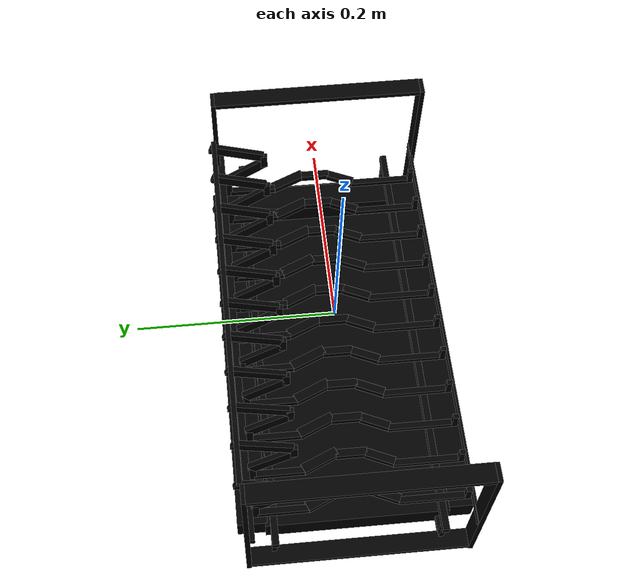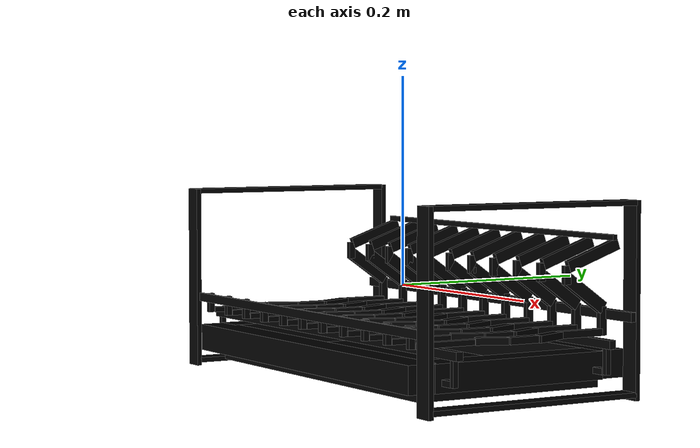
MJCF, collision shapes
<mujoco model="model">
  <option timestep="0.002" gravity="0.0 0.0 -9.81" />
  <compiler angle="radian" />
  <asset>
    <mesh file="visual/DishRack039.obj" name="DishRack039_vis" scale="0.8 0.8 0.8" />
    <texture file="visual/T_BC001.png" name="DishRack039_material" type="2d" />
    <material name="DishRack039_material" rgba="1 1 1 1.0" texture="DishRack039_material" shininess="0.4472135901451111" specular="0.3103448502657381" />
  </asset>
  <default>
    <default class="visual">
      <geom conaffinity="0" contype="0" group="2" type="mesh" density="0" />
    </default>
    <default class="collision">
      <geom group="3" rgba="1 1 1 0.25" density="0" solref="0.004 1" solimp="0.998 0.998 0.001" friction="0.5" />
    </default>
    <default class="spawn">
      <geom group="0" rgba="1 1 1 0.5" contype="0" conaffinity="0" />
      <site group="0" rgba="1 1 1 0.5" />
    </default>
    <default class="region">
      <geom group="1" conaffinity="0" contype="0" rgba="0 1 0 0" mass="0" />
    </default>
  </default>
  <worldbody>
    <body>
      <body name="object">
        <geom mesh="DishRack039_vis" type="mesh" class="visual" material="DishRack039_material" group="2" contype="0" conaffinity="0" density="0" mass="0.5" />
        <geom type="box" pos="-0.21843948 0.106539656 -0.00270032" size="0.00924619436267 0.00239716786892 0.0901747763156" quat="1.0 0.0 0.0 0.0" class="collision" group="3" rgba="0 0 0 0" density="0" friction="0.5" solref="0.004 1" solimp="0.998 0.998 0.001" />
        <geom type="box" pos="-0.21843948 -0.113914128 -0.00270032" size="0.00924619436267 0.00239716786892 0.0901747763156" quat="1.0 0.0 0.0 0.0" class="collision" group="3" rgba="0 0 0 0" density="0" friction="0.5" solref="0.004 1" solimp="0.998 0.998 0.001" />
        <geom type="box" pos="-0.21843948 -0.00342404 0.085288168" size="0.00924619436267 0.00239716786892 0.108553981781" quat="0.7071068286895752 0.7071067690849304 0.0 0.0" class="collision" group="3" rgba="0 0 0 0" density="0" friction="0.5" solref="0.004 1" solimp="0.998 0.998 0.001" />
        <geom type="box" pos="-0.21843948 -0.00342404 -0.08748516" size="0.00924619436267 0.00239716786892 0.108553981781" quat="0.7071068286895752 0.7071067690849304 0.0 0.0" class="collision" group="3" rgba="0 0 0 0" density="0" friction="0.5" solref="0.004 1" solimp="0.998 0.998 0.001" />
        <geom type="box" pos="0.217958208 -0.00342404 -0.08748516" size="0.00924619436267 0.00239716786892 0.108553981781" quat="0.7071068286895752 0.7071067690849304 0.0 0.0" class="collision" group="3" rgba="0 0 0 0" density="0" friction="0.5" solref="0.004 1" solimp="0.998 0.998 0.001" />
        <geom type="box" pos="0.187387792 -0.001031712 -0.066547912" size="0.0033294133842 0.00239716973156 0.084478521347" quat="0.7071068286895752 0.7071067690849304 0.0 0.0" class="collision" group="3" rgba="0 0 0 0" density="0" friction="0.5" solref="0.004 1" solimp="0.998 0.998 0.001" />
        <geom type="box" pos="0.217958208 -0.113914128 -0.00270032" size="0.00924619436267 0.00239716786892 0.0901747763156" quat="1.0 0.0 0.0 0.0" class="collision" group="3" rgba="0 0 0 0" density="0" friction="0.5" solref="0.004 1" solimp="0.998 0.998 0.001" />
        <geom type="box" pos="0.217958208 0.106539656 -0.00270032" size="0.00924619436267 0.00239716786892 0.0901747763156" quat="1.0 0.0 0.0 0.0" class="collision" group="3" rgba="0 0 0 0" density="0" friction="0.5" solref="0.004 1" solimp="0.998 0.998 0.001" />
        <geom type="box" pos="4.448e-05 -0.08356592 -0.040880912" size="0.0033877696842 0.00397985428572 0.224814295769" quat="0.5000000596046448 0.5 -0.4999999701976776 -0.5" class="collision" group="3" rgba="0 0 0 0" density="0" friction="0.5" solref="0.004 1" solimp="0.998 0.998 0.001" />
        <geom type="box" pos="4.448e-05 0.079920608 -0.040880912" size="0.0033877696842 0.00397985428572 0.224814295769" quat="0.5000000596046448 0.5 -0.4999999701976776 -0.5" class="collision" group="3" rgba="0 0 0 0" density="0" friction="0.5" solref="0.004 1" solimp="0.998 0.998 0.001" />
        <geom type="box" pos="-0.003243504 0.109264672 0.051970568" size="0.00243835002184 0.00255434755236 0.193051493168" quat="0.5000000596046448 0.5 -0.4999999701976776 -0.5" class="collision" group="3" rgba="0 0 0 0" density="0" friction="0.5" solref="0.004 1" solimp="0.998 0.998 0.001" />
        <geom type="box" pos="4.4832e-05 0.102894168 -0.017366064" size="0.00355580598116 0.004398721084 0.226417183876" quat="0.5000000596046448 0.5 -0.4999999701976776 -0.5" class="collision" group="3" rgba="0 0 0 0" density="0" friction="0.5" solref="0.004 1" solimp="0.998 0.998 0.001" />
        <geom type="box" pos="-0.19344668 -0.10864204 -0.02735312" size="0.00251364838332 0.00950607657431 0.00292577594518" quat="5.338507946817117e-08 5.338507591545749e-08 -0.7071067690849304 -0.7071068286895752" class="collision" group="3" rgba="0 0 0 0" density="0" friction="0.5" solref="0.004 1" solimp="0.998 0.998 0.001" />
        <geom type="box" pos="-0.192802488 -0.07368232 -0.034318832" size="0.00315784178674 0.00254035890102 0.0320763379335" quat="5.338507946817117e-08 5.338507591545749e-08 -0.7071067690849304 -0.7071068286895752" class="collision" group="3" rgba="0 0 0 0" density="0" friction="0.5" solref="0.004 1" solimp="0.998 0.998 0.001" />
        <geom type="box" pos="-0.192831112 0.070014936 -0.033586416" size="0.00318646356463 0.00327277854085 0.0248665183782" quat="5.338507946817117e-08 5.338507591545749e-08 -0.7071067690849304 -0.7071068286895752" class="collision" group="3" rgba="0 0 0 0" density="0" friction="0.5" solref="0.004 1" solimp="0.998 0.998 0.001" />
        <geom type="box" pos="-0.19344668 0.096679728 -0.023697248" size="0.00251364819706 0.0131619527936 0.00378346256912" quat="5.338507946817117e-08 5.338507591545749e-08 -0.7071067690849304 -0.7071068286895752" class="collision" group="3" rgba="0 0 0 0" density="0" friction="0.5" solref="0.004 1" solimp="0.998 0.998 0.001" />
        <geom type="box" pos="-0.178624264 -0.002023936 -0.033586416" size="0.004015500471 0.00327277928591 0.0154052615165" quat="5.338507946817117e-08 5.338507591545749e-08 -0.7071067690849304 -0.7071068286895752" class="collision" group="3" rgba="0 0 0 0" density="0" friction="0.5" solref="0.004 1" solimp="0.998 0.998 0.001" />
        <geom type="box" pos="-0.19344668 0.07732248 0.00203708" size="0.00251364931464 0.0243524327874 0.00591016486287" quat="5.3406690625479314e-08 8.168458975887916e-08 -0.30070582032203674 -0.9537169337272644" class="collision" group="3" rgba="0 0 0 0" density="0" friction="0.5" solref="0.004 1" solimp="0.998 0.998 0.001" />
        <geom type="box" pos="-0.19344668 0.056486656 0.019753408" size="0.00251364819706 0.00857789069414 0.00349435582757" quat="5.338507946817117e-08 5.338507591545749e-08 -0.7071067690849304 -0.7071068286895752" class="collision" group="3" rgba="0 0 0 0" density="0" friction="0.5" solref="0.004 1" solimp="0.998 0.998 0.001" />
        <geom type="box" pos="-0.193393448 0.085817048 0.036669632" size="0.00256689153612 0.0294012695551 0.00528842955828" quat="8.697315223571422e-08 6.19317148675691e-08 -0.9861523509025574 -0.1658419519662857" class="collision" group="3" rgba="0 0 0 0" density="0" friction="0.5" solref="0.004 1" solimp="0.998 0.998 0.001" />
        <geom type="box" pos="-0.154746376 0.085817048 0.036669632" size="0.00256689153612 0.0294012695551 0.00528842955828" quat="8.697315223571422e-08 6.19317148675691e-08 -0.9861523509025574 -0.1658419519662857" class="collision" group="3" rgba="0 0 0 0" density="0" friction="0.5" solref="0.004 1" solimp="0.998 0.998 0.001" />
        <geom type="box" pos="-0.154799616 0.056486656 0.019753408" size="0.00251364819706 0.00857789069414 0.00349435582757" quat="5.338507946817117e-08 5.338507591545749e-08 -0.7071067690849304 -0.7071068286895752" class="collision" group="3" rgba="0 0 0 0" density="0" friction="0.5" solref="0.004 1" solimp="0.998 0.998 0.001" />
        <geom type="box" pos="-0.154799616 0.07732248 0.00203708" size="0.00251364931464 0.0243524327874 0.00591016486287" quat="5.3406690625479314e-08 8.168458975887916e-08 -0.30070582032203674 -0.9537169337272644" class="collision" group="3" rgba="0 0 0 0" density="0" friction="0.5" solref="0.004 1" solimp="0.998 0.998 0.001" />
        <geom type="box" pos="-0.139977192 -0.002023936 -0.033586416" size="0.004015500471 0.00327277928591 0.0154052615165" quat="5.338507946817117e-08 5.338507591545749e-08 -0.7071067690849304 -0.7071068286895752" class="collision" group="3" rgba="0 0 0 0" density="0" friction="0.5" solref="0.004 1" solimp="0.998 0.998 0.001" />
        <geom type="box" pos="-0.154799616 0.096679728 -0.023697248" size="0.00251364819706 0.0131619527936 0.00378346256912" quat="5.338507946817117e-08 5.338507591545749e-08 -0.7071067690849304 -0.7071068286895752" class="collision" group="3" rgba="0 0 0 0" density="0" friction="0.5" solref="0.004 1" solimp="0.998 0.998 0.001" />
        <geom type="box" pos="-0.15418404 0.070014936 -0.033586416" size="0.00318646356463 0.00327277854085 0.0248665183782" quat="5.338507946817117e-08 5.338507591545749e-08 -0.7071067690849304 -0.7071068286895752" class="collision" group="3" rgba="0 0 0 0" density="0" friction="0.5" solref="0.004 1" solimp="0.998 0.998 0.001" />
        <geom type="box" pos="-0.154155424 -0.07368232 -0.034318832" size="0.00315784178674 0.00254035890102 0.0320763379335" quat="5.338507946817117e-08 5.338507591545749e-08 -0.7071067690849304 -0.7071068286895752" class="collision" group="3" rgba="0 0 0 0" density="0" friction="0.5" solref="0.004 1" solimp="0.998 0.998 0.001" />
        <geom type="box" pos="-0.154799616 -0.10864204 -0.02735312" size="0.00251364838332 0.00950607657431 0.00292577594518" quat="5.338507946817117e-08 5.338507591545749e-08 -0.7071067690849304 -0.7071068286895752" class="collision" group="3" rgba="0 0 0 0" density="0" friction="0.5" solref="0.004 1" solimp="0.998 0.998 0.001" />
        <geom type="box" pos="-0.116755368 -0.10864204 -0.02735312" size="0.00251364838332 0.00950607657431 0.00292577594518" quat="5.338507946817117e-08 5.338507591545749e-08 -0.7071067690849304 -0.7071068286895752" class="collision" group="3" rgba="0 0 0 0" density="0" friction="0.5" solref="0.004 1" solimp="0.998 0.998 0.001" />
        <geom type="box" pos="-0.116111168 -0.07368232 -0.034318832" size="0.00315784178674 0.00254035890102 0.0320763379335" quat="5.338507946817117e-08 5.338507591545749e-08 -0.7071067690849304 -0.7071068286895752" class="collision" group="3" rgba="0 0 0 0" density="0" friction="0.5" solref="0.004 1" solimp="0.998 0.998 0.001" />
        <geom type="box" pos="-0.116139792 0.070014936 -0.033586416" size="0.00318646356463 0.00327277854085 0.0248665183782" quat="5.338507946817117e-08 5.338507591545749e-08 -0.7071067690849304 -0.7071068286895752" class="collision" group="3" rgba="0 0 0 0" density="0" friction="0.5" solref="0.004 1" solimp="0.998 0.998 0.001" />
        <geom type="box" pos="-0.116755368 0.096679728 -0.023697248" size="0.00251364819706 0.0131619527936 0.00378346256912" quat="5.338507946817117e-08 5.338507591545749e-08 -0.7071067690849304 -0.7071068286895752" class="collision" group="3" rgba="0 0 0 0" density="0" friction="0.5" solref="0.004 1" solimp="0.998 0.998 0.001" />
        <geom type="box" pos="-0.101932944 -0.002023936 -0.033586416" size="0.004015500471 0.00327277928591 0.0154052615165" quat="5.338507946817117e-08 5.338507591545749e-08 -0.7071067690849304 -0.7071068286895752" class="collision" group="3" rgba="0 0 0 0" density="0" friction="0.5" solref="0.004 1" solimp="0.998 0.998 0.001" />
        <geom type="box" pos="-0.116755368 0.07732248 0.00203708" size="0.00251364931464 0.0243524327874 0.00591016486287" quat="5.3406690625479314e-08 8.168458975887916e-08 -0.30070582032203674 -0.9537169337272644" class="collision" group="3" rgba="0 0 0 0" density="0" friction="0.5" solref="0.004 1" solimp="0.998 0.998 0.001" />
        <geom type="box" pos="-0.116755368 0.056486656 0.019753408" size="0.00251364819706 0.00857789069414 0.00349435582757" quat="5.338507946817117e-08 5.338507591545749e-08 -0.7071067690849304 -0.7071068286895752" class="collision" group="3" rgba="0 0 0 0" density="0" friction="0.5" solref="0.004 1" solimp="0.998 0.998 0.001" />
        <geom type="box" pos="-0.116702128 0.085817048 0.036669632" size="0.00256689153612 0.0294012695551 0.00528842955828" quat="8.697315223571422e-08 6.19317148675691e-08 -0.9861523509025574 -0.1658419519662857" class="collision" group="3" rgba="0 0 0 0" density="0" friction="0.5" solref="0.004 1" solimp="0.998 0.998 0.001" />
        <geom type="box" pos="-0.079013208 0.085817048 0.036669632" size="0.00256689153612 0.0294012695551 0.00528842955828" quat="8.697315223571422e-08 6.19317148675691e-08 -0.9861523509025574 -0.1658419519662857" class="collision" group="3" rgba="0 0 0 0" density="0" friction="0.5" solref="0.004 1" solimp="0.998 0.998 0.001" />
        <geom type="box" pos="-0.079066448 0.056486656 0.019753408" size="0.00251364819706 0.00857789069414 0.00349435582757" quat="5.338507946817117e-08 5.338507591545749e-08 -0.7071067690849304 -0.7071068286895752" class="collision" group="3" rgba="0 0 0 0" density="0" friction="0.5" solref="0.004 1" solimp="0.998 0.998 0.001" />
        <geom type="box" pos="-0.079066448 0.07732248 0.00203708" size="0.00251364931464 0.0243524327874 0.00591016486287" quat="5.3406690625479314e-08 8.168458975887916e-08 -0.30070582032203674 -0.9537169337272644" class="collision" group="3" rgba="0 0 0 0" density="0" friction="0.5" solref="0.004 1" solimp="0.998 0.998 0.001" />
        <geom type="box" pos="-0.064244024 -0.002023936 -0.033586416" size="0.004015500471 0.00327277928591 0.0154052615165" quat="5.338507946817117e-08 5.338507591545749e-08 -0.7071067690849304 -0.7071068286895752" class="collision" group="3" rgba="0 0 0 0" density="0" friction="0.5" solref="0.004 1" solimp="0.998 0.998 0.001" />
        <geom type="box" pos="-0.079066448 0.096679728 -0.023697248" size="0.00251364819706 0.0131619527936 0.00378346256912" quat="5.338507946817117e-08 5.338507591545749e-08 -0.7071067690849304 -0.7071068286895752" class="collision" group="3" rgba="0 0 0 0" density="0" friction="0.5" solref="0.004 1" solimp="0.998 0.998 0.001" />
        <geom type="box" pos="-0.078450872 0.070014936 -0.033586416" size="0.00318646356463 0.00327277854085 0.0248665183782" quat="5.338507946817117e-08 5.338507591545749e-08 -0.7071067690849304 -0.7071068286895752" class="collision" group="3" rgba="0 0 0 0" density="0" friction="0.5" solref="0.004 1" solimp="0.998 0.998 0.001" />
        <geom type="box" pos="-0.078422256 -0.07368232 -0.034318832" size="0.00315784178674 0.00254035890102 0.0320763379335" quat="5.338507946817117e-08 5.338507591545749e-08 -0.7071067690849304 -0.7071068286895752" class="collision" group="3" rgba="0 0 0 0" density="0" friction="0.5" solref="0.004 1" solimp="0.998 0.998 0.001" />
        <geom type="box" pos="-0.079066448 -0.10864204 -0.02735312" size="0.00251364838332 0.00950607657431 0.00292577594518" quat="5.338507946817117e-08 5.338507591545749e-08 -0.7071067690849304 -0.7071068286895752" class="collision" group="3" rgba="0 0 0 0" density="0" friction="0.5" solref="0.004 1" solimp="0.998 0.998 0.001" />
        <geom type="box" pos="-0.040875488 -0.10864204 -0.02735312" size="0.00251364838332 0.00950607657431 0.00292577594518" quat="5.338507946817117e-08 5.338507591545749e-08 -0.7071067690849304 -0.7071068286895752" class="collision" group="3" rgba="0 0 0 0" density="0" friction="0.5" solref="0.004 1" solimp="0.998 0.998 0.001" />
        <geom type="box" pos="-0.040231288 -0.07368232 -0.034318832" size="0.00315784178674 0.00254035890102 0.0320763379335" quat="5.338507946817117e-08 5.338507591545749e-08 -0.7071067690849304 -0.7071068286895752" class="collision" group="3" rgba="0 0 0 0" density="0" friction="0.5" solref="0.004 1" solimp="0.998 0.998 0.001" />
        <geom type="box" pos="-0.040259912 0.070014936 -0.033586416" size="0.00318646356463 0.00327277854085 0.0248665183782" quat="5.338507946817117e-08 5.338507591545749e-08 -0.7071067690849304 -0.7071068286895752" class="collision" group="3" rgba="0 0 0 0" density="0" friction="0.5" solref="0.004 1" solimp="0.998 0.998 0.001" />
        <geom type="box" pos="-0.040875488 0.096679728 -0.023697248" size="0.00251364819706 0.0131619527936 0.00378346256912" quat="5.338507946817117e-08 5.338507591545749e-08 -0.7071067690849304 -0.7071068286895752" class="collision" group="3" rgba="0 0 0 0" density="0" friction="0.5" solref="0.004 1" solimp="0.998 0.998 0.001" />
        <geom type="box" pos="-0.026053064 -0.002023936 -0.033586416" size="0.004015500471 0.00327277928591 0.0154052615165" quat="5.338507946817117e-08 5.338507591545749e-08 -0.7071067690849304 -0.7071068286895752" class="collision" group="3" rgba="0 0 0 0" density="0" friction="0.5" solref="0.004 1" solimp="0.998 0.998 0.001" />
        <geom type="box" pos="-0.040875488 0.07732248 0.00203708" size="0.00251364931464 0.0243524327874 0.00591016486287" quat="5.3406690625479314e-08 8.168458975887916e-08 -0.30070582032203674 -0.9537169337272644" class="collision" group="3" rgba="0 0 0 0" density="0" friction="0.5" solref="0.004 1" solimp="0.998 0.998 0.001" />
        <geom type="box" pos="-0.040875488 0.056486656 0.019753408" size="0.00251364819706 0.00857789069414 0.00349435582757" quat="5.338507946817117e-08 5.338507591545749e-08 -0.7071067690849304 -0.7071068286895752" class="collision" group="3" rgba="0 0 0 0" density="0" friction="0.5" solref="0.004 1" solimp="0.998 0.998 0.001" />
        <geom type="box" pos="-0.040822248 0.085817048 0.036669632" size="0.00256689153612 0.0294012695551 0.00528842955828" quat="8.697315223571422e-08 6.19317148675691e-08 -0.9861523509025574 -0.1658419519662857" class="collision" group="3" rgba="0 0 0 0" density="0" friction="0.5" solref="0.004 1" solimp="0.998 0.998 0.001" />
        <geom type="box" pos="-0.003333784 -0.10864204 -0.02735312" size="0.00251364838332 0.00950607657431 0.00292577594518" quat="5.338507946817117e-08 5.338507591545749e-08 -0.7071067690849304 -0.7071068286895752" class="collision" group="3" rgba="0 0 0 0" density="0" friction="0.5" solref="0.004 1" solimp="0.998 0.998 0.001" />
        <geom type="box" pos="-0.002689584 -0.07368232 -0.034318832" size="0.00315784178674 0.00254035890102 0.0320763379335" quat="5.338507946817117e-08 5.338507591545749e-08 -0.7071067690849304 -0.7071068286895752" class="collision" group="3" rgba="0 0 0 0" density="0" friction="0.5" solref="0.004 1" solimp="0.998 0.998 0.001" />
        <geom type="box" pos="-0.0027182 0.070014936 -0.033586416" size="0.00318646356463 0.00327277854085 0.0248665183782" quat="5.338507946817117e-08 5.338507591545749e-08 -0.7071067690849304 -0.7071068286895752" class="collision" group="3" rgba="0 0 0 0" density="0" friction="0.5" solref="0.004 1" solimp="0.998 0.998 0.001" />
        <geom type="box" pos="-0.003333784 0.096679728 -0.023697248" size="0.00251364819706 0.0131619527936 0.00378346256912" quat="5.338507946817117e-08 5.338507591545749e-08 -0.7071067690849304 -0.7071068286895752" class="collision" group="3" rgba="0 0 0 0" density="0" friction="0.5" solref="0.004 1" solimp="0.998 0.998 0.001" />
        <geom type="box" pos="0.01148864 -0.002023936 -0.033586416" size="0.004015500471 0.00327277928591 0.0154052615165" quat="5.338507946817117e-08 5.338507591545749e-08 -0.7071067690849304 -0.7071068286895752" class="collision" group="3" rgba="0 0 0 0" density="0" friction="0.5" solref="0.004 1" solimp="0.998 0.998 0.001" />
        <geom type="box" pos="-0.003333776 0.07732248 0.00203708" size="0.00251364931464 0.0243524327874 0.00591016486287" quat="5.3406690625479314e-08 8.168458975887916e-08 -0.30070582032203674 -0.9537169337272644" class="collision" group="3" rgba="0 0 0 0" density="0" friction="0.5" solref="0.004 1" solimp="0.998 0.998 0.001" />
        <geom type="box" pos="-0.003333784 0.056486656 0.019753408" size="0.00251364819706 0.00857789069414 0.00349435582757" quat="5.338507946817117e-08 5.338507591545749e-08 -0.7071067690849304 -0.7071068286895752" class="collision" group="3" rgba="0 0 0 0" density="0" friction="0.5" solref="0.004 1" solimp="0.998 0.998 0.001" />
        <geom type="box" pos="-0.003280536 0.085817048 0.036669632" size="0.00256689153612 0.0294012695551 0.00528842955828" quat="8.697315223571422e-08 6.19317148675691e-08 -0.9861523509025574 -0.1658419519662857" class="collision" group="3" rgba="0 0 0 0" density="0" friction="0.5" solref="0.004 1" solimp="0.998 0.998 0.001" />
        <geom type="box" pos="0.0342452 -0.10864204 -0.02735312" size="0.00251364838332 0.00950607657431 0.00292577594518" quat="5.338507946817117e-08 5.338507591545749e-08 -0.7071067690849304 -0.7071068286895752" class="collision" group="3" rgba="0 0 0 0" density="0" friction="0.5" solref="0.004 1" solimp="0.998 0.998 0.001" />
        <geom type="box" pos="0.0348894 -0.07368232 -0.034318832" size="0.00315784178674 0.00254035890102 0.0320763379335" quat="5.338507946817117e-08 5.338507591545749e-08 -0.7071067690849304 -0.7071068286895752" class="collision" group="3" rgba="0 0 0 0" density="0" friction="0.5" solref="0.004 1" solimp="0.998 0.998 0.001" />
        <geom type="box" pos="0.034860776 0.070014936 -0.033586416" size="0.00318646356463 0.00327277854085 0.0248665183782" quat="5.338507946817117e-08 5.338507591545749e-08 -0.7071067690849304 -0.7071068286895752" class="collision" group="3" rgba="0 0 0 0" density="0" friction="0.5" solref="0.004 1" solimp="0.998 0.998 0.001" />
        <geom type="box" pos="0.0342452 0.096679728 -0.023697248" size="0.00251364819706 0.0131619527936 0.00378346256912" quat="5.338507946817117e-08 5.338507591545749e-08 -0.7071067690849304 -0.7071068286895752" class="collision" group="3" rgba="0 0 0 0" density="0" friction="0.5" solref="0.004 1" solimp="0.998 0.998 0.001" />
        <geom type="box" pos="0.049067624 -0.002023936 -0.033586416" size="0.004015500471 0.00327277928591 0.0154052615165" quat="5.338507946817117e-08 5.338507591545749e-08 -0.7071067690849304 -0.7071068286895752" class="collision" group="3" rgba="0 0 0 0" density="0" friction="0.5" solref="0.004 1" solimp="0.998 0.998 0.001" />
        <geom type="box" pos="0.0342452 0.07732248 0.00203708" size="0.00251364931464 0.0243524327874 0.00591016486287" quat="5.3406690625479314e-08 8.168458975887916e-08 -0.30070582032203674 -0.9537169337272644" class="collision" group="3" rgba="0 0 0 0" density="0" friction="0.5" solref="0.004 1" solimp="0.998 0.998 0.001" />
        <geom type="box" pos="0.0342452 0.056486656 0.019753408" size="0.00251364819706 0.00857789069414 0.00349435582757" quat="5.338507946817117e-08 5.338507591545749e-08 -0.7071067690849304 -0.7071068286895752" class="collision" group="3" rgba="0 0 0 0" density="0" friction="0.5" solref="0.004 1" solimp="0.998 0.998 0.001" />
        <geom type="box" pos="0.03429844 0.085817048 0.036669632" size="0.00256689153612 0.0294012695551 0.00528842955828" quat="8.697315223571422e-08 6.19317148675691e-08 -0.9861523509025574 -0.1658419519662857" class="collision" group="3" rgba="0 0 0 0" density="0" friction="0.5" solref="0.004 1" solimp="0.998 0.998 0.001" />
        <geom type="box" pos="0.072291568 -0.10864204 -0.02735312" size="0.00251364838332 0.00950607657431 0.00292577594518" quat="5.338507946817117e-08 5.338507591545749e-08 -0.7071067690849304 -0.7071068286895752" class="collision" group="3" rgba="0 0 0 0" density="0" friction="0.5" solref="0.004 1" solimp="0.998 0.998 0.001" />
        <geom type="box" pos="0.072935768 -0.07368232 -0.034318832" size="0.00315784178674 0.00254035890102 0.0320763379335" quat="5.338507946817117e-08 5.338507591545749e-08 -0.7071067690849304 -0.7071068286895752" class="collision" group="3" rgba="0 0 0 0" density="0" friction="0.5" solref="0.004 1" solimp="0.998 0.998 0.001" />
        <geom type="box" pos="0.072907152 0.070014936 -0.033586416" size="0.00318646356463 0.00327277854085 0.0248665183782" quat="5.338507946817117e-08 5.338507591545749e-08 -0.7071067690849304 -0.7071068286895752" class="collision" group="3" rgba="0 0 0 0" density="0" friction="0.5" solref="0.004 1" solimp="0.998 0.998 0.001" />
        <geom type="box" pos="0.072291568 0.096679728 -0.023697248" size="0.00251364819706 0.0131619527936 0.00378346256912" quat="5.338507946817117e-08 5.338507591545749e-08 -0.7071067690849304 -0.7071068286895752" class="collision" group="3" rgba="0 0 0 0" density="0" friction="0.5" solref="0.004 1" solimp="0.998 0.998 0.001" />
        <geom type="box" pos="0.087113992 -0.002023936 -0.033586416" size="0.004015500471 0.00327277928591 0.0154052615165" quat="5.338507946817117e-08 5.338507591545749e-08 -0.7071067690849304 -0.7071068286895752" class="collision" group="3" rgba="0 0 0 0" density="0" friction="0.5" solref="0.004 1" solimp="0.998 0.998 0.001" />
        <geom type="box" pos="0.072291568 0.07732248 0.00203708" size="0.00251364931464 0.0243524327874 0.00591016486287" quat="5.3406690625479314e-08 8.168458975887916e-08 -0.30070582032203674 -0.9537169337272644" class="collision" group="3" rgba="0 0 0 0" density="0" friction="0.5" solref="0.004 1" solimp="0.998 0.998 0.001" />
        <geom type="box" pos="0.072291568 0.056486656 0.019753408" size="0.00251364819706 0.00857789069414 0.00349435582757" quat="5.338507946817117e-08 5.338507591545749e-08 -0.7071067690849304 -0.7071068286895752" class="collision" group="3" rgba="0 0 0 0" density="0" friction="0.5" solref="0.004 1" solimp="0.998 0.998 0.001" />
        <geom type="box" pos="0.072344808 0.085817048 0.036669632" size="0.00256689153612 0.0294012695551 0.00528842955828" quat="8.697315223571422e-08 6.19317148675691e-08 -0.9861523509025574 -0.1658419519662857" class="collision" group="3" rgba="0 0 0 0" density="0" friction="0.5" solref="0.004 1" solimp="0.998 0.998 0.001" />
        <geom type="box" pos="0.110359048 -0.10864204 -0.02735312" size="0.00251364838332 0.00950607657431 0.00292577594518" quat="5.338507946817117e-08 5.338507591545749e-08 -0.7071067690849304 -0.7071068286895752" class="collision" group="3" rgba="0 0 0 0" density="0" friction="0.5" solref="0.004 1" solimp="0.998 0.998 0.001" />
        <geom type="box" pos="0.11100324 -0.07368232 -0.034318832" size="0.00315784178674 0.00254035890102 0.0320763379335" quat="5.338507946817117e-08 5.338507591545749e-08 -0.7071067690849304 -0.7071068286895752" class="collision" group="3" rgba="0 0 0 0" density="0" friction="0.5" solref="0.004 1" solimp="0.998 0.998 0.001" />
        <geom type="box" pos="0.110974624 0.070014936 -0.033586416" size="0.00318646356463 0.00327277854085 0.0248665183782" quat="5.338507946817117e-08 5.338507591545749e-08 -0.7071067690849304 -0.7071068286895752" class="collision" group="3" rgba="0 0 0 0" density="0" friction="0.5" solref="0.004 1" solimp="0.998 0.998 0.001" />
        <geom type="box" pos="0.110359048 0.096679728 -0.023697248" size="0.00251364819706 0.0131619527936 0.00378346256912" quat="5.338507946817117e-08 5.338507591545749e-08 -0.7071067690849304 -0.7071068286895752" class="collision" group="3" rgba="0 0 0 0" density="0" friction="0.5" solref="0.004 1" solimp="0.998 0.998 0.001" />
        <geom type="box" pos="0.125181472 -0.002023936 -0.033586416" size="0.004015500471 0.00327277928591 0.0154052615165" quat="5.338507946817117e-08 5.338507591545749e-08 -0.7071067690849304 -0.7071068286895752" class="collision" group="3" rgba="0 0 0 0" density="0" friction="0.5" solref="0.004 1" solimp="0.998 0.998 0.001" />
        <geom type="box" pos="0.110359048 0.07732248 0.00203708" size="0.00251364931464 0.0243524327874 0.00591016486287" quat="5.3406690625479314e-08 8.168458975887916e-08 -0.30070582032203674 -0.9537169337272644" class="collision" group="3" rgba="0 0 0 0" density="0" friction="0.5" solref="0.004 1" solimp="0.998 0.998 0.001" />
        <geom type="box" pos="0.110359048 0.056486656 0.019753408" size="0.00251364819706 0.00857789069414 0.00349435582757" quat="5.338507946817117e-08 5.338507591545749e-08 -0.7071067690849304 -0.7071068286895752" class="collision" group="3" rgba="0 0 0 0" density="0" friction="0.5" solref="0.004 1" solimp="0.998 0.998 0.001" />
        <geom type="box" pos="0.110412288 0.085817048 0.036669632" size="0.00256689153612 0.0294012695551 0.00528842955828" quat="8.697315223571422e-08 6.19317148675691e-08 -0.9861523509025574 -0.1658419519662857" class="collision" group="3" rgba="0 0 0 0" density="0" friction="0.5" solref="0.004 1" solimp="0.998 0.998 0.001" />
        <geom type="box" pos="0.14822892 -0.10864204 -0.02735312" size="0.00251364838332 0.00950607657431 0.00292577594518" quat="5.338507946817117e-08 5.338507591545749e-08 -0.7071067690849304 -0.7071068286895752" class="collision" group="3" rgba="0 0 0 0" density="0" friction="0.5" solref="0.004 1" solimp="0.998 0.998 0.001" />
        <geom type="box" pos="0.148873112 -0.07368232 -0.034318832" size="0.00315784178674 0.00254035890102 0.0320763379335" quat="5.338507946817117e-08 5.338507591545749e-08 -0.7071067690849304 -0.7071068286895752" class="collision" group="3" rgba="0 0 0 0" density="0" friction="0.5" solref="0.004 1" solimp="0.998 0.998 0.001" />
        <geom type="box" pos="0.148844496 0.070014936 -0.033586416" size="0.00318646356463 0.00327277854085 0.0248665183782" quat="5.338507946817117e-08 5.338507591545749e-08 -0.7071067690849304 -0.7071068286895752" class="collision" group="3" rgba="0 0 0 0" density="0" friction="0.5" solref="0.004 1" solimp="0.998 0.998 0.001" />
        <geom type="box" pos="0.14822892 0.096679728 -0.023697248" size="0.00251364819706 0.0131619527936 0.00378346256912" quat="5.338507946817117e-08 5.338507591545749e-08 -0.7071067690849304 -0.7071068286895752" class="collision" group="3" rgba="0 0 0 0" density="0" friction="0.5" solref="0.004 1" solimp="0.998 0.998 0.001" />
        <geom type="box" pos="0.163051344 -0.002023936 -0.033586416" size="0.004015500471 0.00327277928591 0.0154052615165" quat="5.338507946817117e-08 5.338507591545749e-08 -0.7071067690849304 -0.7071068286895752" class="collision" group="3" rgba="0 0 0 0" density="0" friction="0.5" solref="0.004 1" solimp="0.998 0.998 0.001" />
        <geom type="box" pos="0.14822892 0.07732248 0.00203708" size="0.00251364931464 0.0243524327874 0.00591016486287" quat="5.3406690625479314e-08 8.168458975887916e-08 -0.30070582032203674 -0.9537169337272644" class="collision" group="3" rgba="0 0 0 0" density="0" friction="0.5" solref="0.004 1" solimp="0.998 0.998 0.001" />
        <geom type="box" pos="0.14822892 0.056486656 0.019753408" size="0.00251364819706 0.00857789069414 0.00349435582757" quat="5.338507946817117e-08 5.338507591545749e-08 -0.7071067690849304 -0.7071068286895752" class="collision" group="3" rgba="0 0 0 0" density="0" friction="0.5" solref="0.004 1" solimp="0.998 0.998 0.001" />
        <geom type="box" pos="0.14828216 0.085817048 0.036669632" size="0.00256689153612 0.0294012695551 0.00528842955828" quat="8.697315223571422e-08 6.19317148675691e-08 -0.9861523509025574 -0.1658419519662857" class="collision" group="3" rgba="0 0 0 0" density="0" friction="0.5" solref="0.004 1" solimp="0.998 0.998 0.001" />
        <geom type="box" pos="0.186750008 -0.10864204 -0.02735312" size="0.00251364838332 0.00950607657431 0.00292577594518" quat="5.338507946817117e-08 5.338507591545749e-08 -0.7071067690849304 -0.7071068286895752" class="collision" group="3" rgba="0 0 0 0" density="0" friction="0.5" solref="0.004 1" solimp="0.998 0.998 0.001" />
        <geom type="box" pos="0.1873942 -0.07368232 -0.034318832" size="0.00315784178674 0.00254035890102 0.0320763379335" quat="5.338507946817117e-08 5.338507591545749e-08 -0.7071067690849304 -0.7071068286895752" class="collision" group="3" rgba="0 0 0 0" density="0" friction="0.5" solref="0.004 1" solimp="0.998 0.998 0.001" />
        <geom type="box" pos="0.187365576 0.070014936 -0.033586416" size="0.00318646356463 0.00327277854085 0.0248665183782" quat="5.338507946817117e-08 5.338507591545749e-08 -0.7071067690849304 -0.7071068286895752" class="collision" group="3" rgba="0 0 0 0" density="0" friction="0.5" solref="0.004 1" solimp="0.998 0.998 0.001" />
        <geom type="box" pos="0.186750008 0.096679728 -0.023697248" size="0.00251364819706 0.0131619527936 0.00378346256912" quat="5.338507946817117e-08 5.338507591545749e-08 -0.7071067690849304 -0.7071068286895752" class="collision" group="3" rgba="0 0 0 0" density="0" friction="0.5" solref="0.004 1" solimp="0.998 0.998 0.001" />
        <geom type="box" pos="0.201572416 -0.002023936 -0.033586416" size="0.004015500471 0.00327277928591 0.0154052615165" quat="5.338507946817117e-08 5.338507591545749e-08 -0.7071067690849304 -0.7071068286895752" class="collision" group="3" rgba="0 0 0 0" density="0" friction="0.5" solref="0.004 1" solimp="0.998 0.998 0.001" />
        <geom type="box" pos="0.186750008 0.07732248 0.00203708" size="0.00251364931464 0.0243524327874 0.00591016486287" quat="5.3406690625479314e-08 8.168458975887916e-08 -0.30070582032203674 -0.9537169337272644" class="collision" group="3" rgba="0 0 0 0" density="0" friction="0.5" solref="0.004 1" solimp="0.998 0.998 0.001" />
        <geom type="box" pos="0.186750008 0.056486656 0.019753408" size="0.00251364819706 0.00857789069414 0.00349435582757" quat="5.338507946817117e-08 5.338507591545749e-08 -0.7071067690849304 -0.7071068286895752" class="collision" group="3" rgba="0 0 0 0" density="0" friction="0.5" solref="0.004 1" solimp="0.998 0.998 0.001" />
        <geom type="box" pos="0.186803248 0.085817048 0.036669632" size="0.00256689153612 0.0294012695551 0.00528842955828" quat="8.697315223571422e-08 6.19317148675691e-08 -0.9861523509025574 -0.1658419519662857" class="collision" group="3" rgba="0 0 0 0" density="0" friction="0.5" solref="0.004 1" solimp="0.998 0.998 0.001" />
        <geom type="box" pos="0.215257648 0.08064624 -0.056670984" size="0.00251364856958 0.0120518311858 0.00252841729671" quat="5.338507946817117e-08 5.338507591545749e-08 -0.7071067690849304 -0.7071068286895752" class="collision" group="3" rgba="0 0 0 0" density="0" friction="0.5" solref="0.004 1" solimp="0.998 0.998 0.001" />
        <geom type="box" pos="0.201400424 0.080056928 -0.066016088" size="0.00292108543217 0.0114929385484 0.00311772823333" quat="0.5000000596046448 -0.5000000596046448 -0.4999999403953552 -0.4999999701976776" class="collision" group="3" rgba="0 0 0 0" density="0" friction="0.5" solref="0.004 1" solimp="0.998 0.998 0.001" />
        <geom type="box" pos="0.201400424 -0.082368968 -0.066016088" size="0.00292108543217 0.0114929385484 0.00311772823333" quat="0.5000000596046448 -0.5000000596046448 -0.4999999403953552 -0.4999999701976776" class="collision" group="3" rgba="0 0 0 0" density="0" friction="0.5" solref="0.004 1" solimp="0.998 0.998 0.001" />
        <geom type="box" pos="0.215257648 -0.082892944 -0.056670984" size="0.00251364856958 0.0120518311858 0.00252841729671" quat="5.338507946817117e-08 5.338507591545749e-08 -0.7071067690849304 -0.7071068286895752" class="collision" group="3" rgba="0 0 0 0" density="0" friction="0.5" solref="0.004 1" solimp="0.998 0.998 0.001" />
        <geom type="box" pos="-0.217971376 -0.082892944 -0.056670984" size="0.00251364856958 0.0120518311858 0.00252841729671" quat="1.3767878215276141e-07 1.376787679419067e-07 0.7071067690849304 0.7071068286895752" class="collision" group="3" rgba="0 0 0 0" density="0" friction="0.5" solref="0.004 1" solimp="0.998 0.998 0.001" />
        <geom type="box" pos="-0.204114152 -0.082368968 -0.066016088" size="0.00292108543217 0.0114929385484 0.00311772823333" quat="0.5000000596046448 -0.5000000596046448 0.4999999403953552 0.4999999701976776" class="collision" group="3" rgba="0 0 0 0" density="0" friction="0.5" solref="0.004 1" solimp="0.998 0.998 0.001" />
        <geom type="box" pos="-0.204114152 0.080056928 -0.066016088" size="0.00292108543217 0.0114929385484 0.00311772823333" quat="0.5000000596046448 -0.5000000596046448 0.4999999403953552 0.4999999701976776" class="collision" group="3" rgba="0 0 0 0" density="0" friction="0.5" solref="0.004 1" solimp="0.998 0.998 0.001" />
        <geom type="box" pos="-0.217971376 0.08064624 -0.056670984" size="0.00251364856958 0.0120518311858 0.00252841729671" quat="1.3767878215276141e-07 1.376787679419067e-07 0.7071067690849304 0.7071068286895752" class="collision" group="3" rgba="0 0 0 0" density="0" friction="0.5" solref="0.004 1" solimp="0.998 0.998 0.001" />
        <geom type="box" pos="-0.19010152 -0.001031712 -0.066547912" size="0.0033294133842 0.00239716973156 0.084478521347" quat="0.7071068286895752 0.7071067690849304 0.0 0.0" class="collision" group="3" rgba="0 0 0 0" density="0" friction="0.5" solref="0.004 1" solimp="0.998 0.998 0.001" />
        <geom type="box" pos="0.185090784 -0.00216216 -0.062303976" size="0.0146506398916 0.0129560515284 0.0901009380818" quat="0.7071068286895752 0.7071067690849304 0.0 0.0" class="collision" group="3" rgba="0 0 0 0" density="0" friction="0.5" solref="0.004 1" solimp="0.998 0.998 0.001" />
        <geom type="box" pos="-0.0013802 0.1005528 -0.062303976" size="0.0146506458521 0.0129560545087 0.196959209442" quat="0.5000000596046448 0.5 0.4999999701976776 0.5" class="collision" group="3" rgba="0 0 0 0" density="0" friction="0.5" solref="0.004 1" solimp="0.998 0.998 0.001" />
        <geom type="box" pos="-0.187008072 -0.00216216 -0.062303976" size="0.0146506398916 0.0129560515284 0.0901009380818" quat="0.7071068286895752 0.7071067690849304 0.0 0.0" class="collision" group="3" rgba="0 0 0 0" density="0" friction="0.5" solref="0.004 1" solimp="0.998 0.998 0.001" />
        <geom type="box" pos="-0.0013802 -0.101976 -0.062303976" size="0.0146506458521 0.0129560545087 0.196959209442" quat="0.5000000596046448 -0.5 0.4999999701976776 -0.5" class="collision" group="3" rgba="0 0 0 0" density="0" friction="0.5" solref="0.004 1" solimp="0.998 0.998 0.001" />
        <geom type="box" pos="-0.001191848 -0.000675424 -0.078739336" size="0.183440351486 0.00587136149406 0.0964460432533" quat="5.338507946817117e-08 5.338507591545749e-08 -0.7071067690849304 -0.7071068286895752" class="collision" group="3" rgba="0 0 0 0" density="0" friction="0.5" solref="0.004 1" solimp="0.998 0.998 0.001" />
        <geom type="box" pos="0.218216632 -0.00342404 0.085288168" size="0.00924619436267 0.00239716786892 0.108553981781" quat="0.7071068286895752 0.7071067690849304 0.0 0.0" class="collision" group="3" rgba="0 0 0 0" density="0" friction="0.5" solref="0.004 1" solimp="0.998 0.998 0.001" />
        <geom type="box" pos="4.4832e-05 -0.112120448 -0.022459392" size="0.00134318619966 0.00416764058172 0.226417183876" quat="0.5000000596046448 0.5 -0.4999999701976776 -0.5" class="collision" group="3" rgba="0 0 0 0" density="0" friction="0.5" solref="0.004 1" solimp="0.998 0.998 0.001" />
        <geom type="box" pos="0.195867608 0.029638288 -0.033586416" size="0.00493565052748 0.00327277928591 0.0190645754337" quat="0.14764025807380676 0.14764024317264557 -0.6915217638015747 -0.6915218234062195" class="collision" group="3" rgba="0 0 0 0" density="0" friction="0.5" solref="0.004 1" solimp="0.998 0.998 0.001" />
        <geom type="box" pos="0.19457904 -0.030003832 -0.033586416" size="0.00415604002773 0.00327277928591 0.0147933214903" quat="0.14764033257961273 -0.14764033257961273 -0.6915217638015747 0.6915217638015747" class="collision" group="3" rgba="0 0 0 0" density="0" friction="0.5" solref="0.004 1" solimp="0.998 0.998 0.001" />
        <geom type="box" pos="0.155866704 -0.030003832 -0.033586416" size="0.00415604002773 0.00327277928591 0.0147933214903" quat="0.14764033257961273 -0.14764033257961273 -0.6915217638015747 0.6915217638015747" class="collision" group="3" rgba="0 0 0 0" density="0" friction="0.5" solref="0.004 1" solimp="0.998 0.998 0.001" />
        <geom type="box" pos="0.157339608 0.029638288 -0.033586416" size="0.00493565052748 0.00327277928591 0.0190645754337" quat="0.14764025807380676 0.14764024317264557 -0.6915217638015747 -0.6915218234062195" class="collision" group="3" rgba="0 0 0 0" density="0" friction="0.5" solref="0.004 1" solimp="0.998 0.998 0.001" />
        <geom type="box" pos="0.119355784 0.029638288 -0.033586416" size="0.00493565052748 0.00327277928591 0.0190645754337" quat="0.14764025807380676 0.14764024317264557 -0.6915217638015747 -0.6915218234062195" class="collision" group="3" rgba="0 0 0 0" density="0" friction="0.5" solref="0.004 1" solimp="0.998 0.998 0.001" />
        <geom type="box" pos="0.11788288 -0.030003832 -0.033586416" size="0.00415604002773 0.00327277928591 0.0147933214903" quat="0.14764033257961273 -0.14764033257961273 -0.6915217638015747 0.6915217638015747" class="collision" group="3" rgba="0 0 0 0" density="0" friction="0.5" solref="0.004 1" solimp="0.998 0.998 0.001" />
        <geom type="box" pos="0.079995088 -0.030003832 -0.033586416" size="0.00415604002773 0.00327277928591 0.0147933214903" quat="0.14764033257961273 -0.14764033257961273 -0.6915217638015747 0.6915217638015747" class="collision" group="3" rgba="0 0 0 0" density="0" friction="0.5" solref="0.004 1" solimp="0.998 0.998 0.001" />
        <geom type="box" pos="0.081468 0.029638288 -0.033586416" size="0.00493565052748 0.00327277928591 0.0190645754337" quat="0.14764025807380676 0.14764024317264557 -0.6915217638015747 -0.6915218234062195" class="collision" group="3" rgba="0 0 0 0" density="0" friction="0.5" solref="0.004 1" solimp="0.998 0.998 0.001" />
        <geom type="box" pos="-0.069748256 0.029638288 -0.033586416" size="0.00493565052748 0.00327277928591 0.0190645754337" quat="0.14764025807380676 0.14764024317264557 -0.6915217638015747 -0.6915218234062195" class="collision" group="3" rgba="0 0 0 0" density="0" friction="0.5" solref="0.004 1" solimp="0.998 0.998 0.001" />
        <geom type="box" pos="-0.07122116 -0.030003832 -0.033586416" size="0.00415604002773 0.00327277928591 0.0147933214903" quat="0.14764033257961273 -0.14764033257961273 -0.6915217638015747 0.6915217638015747" class="collision" group="3" rgba="0 0 0 0" density="0" friction="0.5" solref="0.004 1" solimp="0.998 0.998 0.001" />
        <geom type="box" pos="-0.033333376 -0.030003832 -0.033586416" size="0.00415604002773 0.00327277928591 0.0147933214903" quat="0.14764033257961273 -0.14764033257961273 -0.6915217638015747 0.6915217638015747" class="collision" group="3" rgba="0 0 0 0" density="0" friction="0.5" solref="0.004 1" solimp="0.998 0.998 0.001" />
        <geom type="box" pos="-0.031860464 0.029638288 -0.033586416" size="0.00493565052748 0.00327277928591 0.0190645754337" quat="0.14764025807380676 0.14764024317264557 -0.6915217638015747 -0.6915218234062195" class="collision" group="3" rgba="0 0 0 0" density="0" friction="0.5" solref="0.004 1" solimp="0.998 0.998 0.001" />
        <geom type="box" pos="0.00612336 0.029638288 -0.033586416" size="0.00493565052748 0.00327277928591 0.0190645754337" quat="0.14764025807380676 0.14764024317264557 -0.6915217638015747 -0.6915218234062195" class="collision" group="3" rgba="0 0 0 0" density="0" friction="0.5" solref="0.004 1" solimp="0.998 0.998 0.001" />
        <geom type="box" pos="0.004650448 -0.030003832 -0.033586416" size="0.00415604002773 0.00327277928591 0.0147933214903" quat="0.14764033257961273 -0.14764033257961273 -0.6915217638015747 0.6915217638015747" class="collision" group="3" rgba="0 0 0 0" density="0" friction="0.5" solref="0.004 1" solimp="0.998 0.998 0.001" />
        <geom type="box" pos="0.042078056 -0.030003832 -0.033586416" size="0.00415604002773 0.00327277928591 0.0147933214903" quat="0.14764033257961273 -0.14764033257961273 -0.6915217638015747 0.6915217638015747" class="collision" group="3" rgba="0 0 0 0" density="0" friction="0.5" solref="0.004 1" solimp="0.998 0.998 0.001" />
        <geom type="box" pos="0.043366632 0.029638288 -0.033586416" size="0.00493565052748 0.00327277928591 0.0190645754337" quat="0.14764025807380676 0.14764024317264557 -0.6915217638015747 -0.6915218234062195" class="collision" group="3" rgba="0 0 0 0" density="0" friction="0.5" solref="0.004 1" solimp="0.998 0.998 0.001" />
        <geom type="box" pos="-0.109074584 -0.030003832 -0.033586416" size="0.00415604002773 0.00327277928591 0.0147933214903" quat="0.14764033257961273 -0.14764033257961273 -0.6915217638015747 0.6915217638015747" class="collision" group="3" rgba="0 0 0 0" density="0" friction="0.5" solref="0.004 1" solimp="0.998 0.998 0.001" />
        <geom type="box" pos="-0.10760168 0.029638288 -0.033586416" size="0.00493565052748 0.00327277928591 0.0190645754337" quat="0.14764025807380676 0.14764024317264557 -0.6915217638015747 -0.6915218234062195" class="collision" group="3" rgba="0 0 0 0" density="0" friction="0.5" solref="0.004 1" solimp="0.998 0.998 0.001" />
        <geom type="box" pos="-0.145585504 0.029638288 -0.033586416" size="0.00493565052748 0.00327277928591 0.0190645754337" quat="0.14764025807380676 0.14764024317264557 -0.6915217638015747 -0.6915218234062195" class="collision" group="3" rgba="0 0 0 0" density="0" friction="0.5" solref="0.004 1" solimp="0.998 0.998 0.001" />
        <geom type="box" pos="-0.1470584 -0.030003832 -0.033586416" size="0.00415604002773 0.00327277928591 0.0147933214903" quat="0.14764033257961273 -0.14764033257961273 -0.6915217638015747 0.6915217638015747" class="collision" group="3" rgba="0 0 0 0" density="0" friction="0.5" solref="0.004 1" solimp="0.998 0.998 0.001" />
        <geom type="box" pos="-0.18571128 -0.030003832 -0.033586416" size="0.00415604002773 0.00327277928591 0.0147933214903" quat="0.14764033257961273 -0.14764033257961273 -0.6915217638015747 0.6915217638015747" class="collision" group="3" rgba="0 0 0 0" density="0" friction="0.5" solref="0.004 1" solimp="0.998 0.998 0.001" />
        <geom type="box" pos="-0.184238376 0.029638288 -0.033586416" size="0.00493565052748 0.00327277928591 0.0190645754337" quat="0.14764025807380676 0.14764024317264557 -0.6915217638015747 -0.6915218234062195" class="collision" group="3" rgba="0 0 0 0" density="0" friction="0.5" solref="0.004 1" solimp="0.998 0.998 0.001" />
        <geom class="region" name="reg_int_0" type="box" pos="-0.000210692 -0.026886496 0.075639452" size="0.209387764 0.078983744 0.10792474" />
        <geom size="0.22926184 0.117906088 0.091704736" pos="0 -0 -0" name="reg_bbox" class="region" type="box" quat="1.0 0.0 0.0 0.0" />
      </body>
    </body>
  </worldbody>
  <actuator />
</mujoco>
